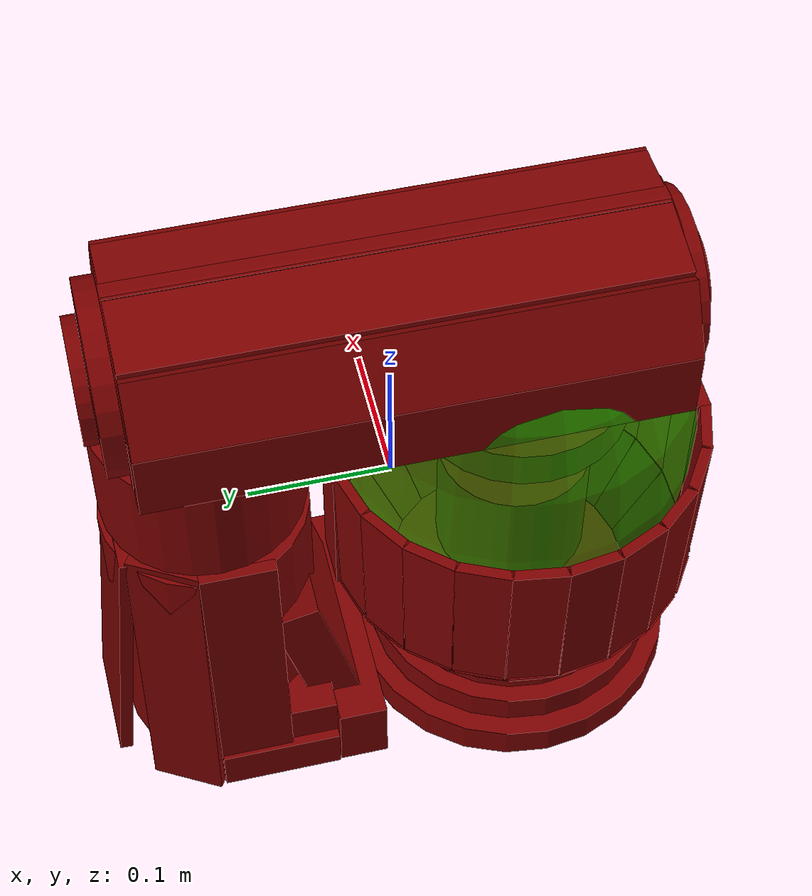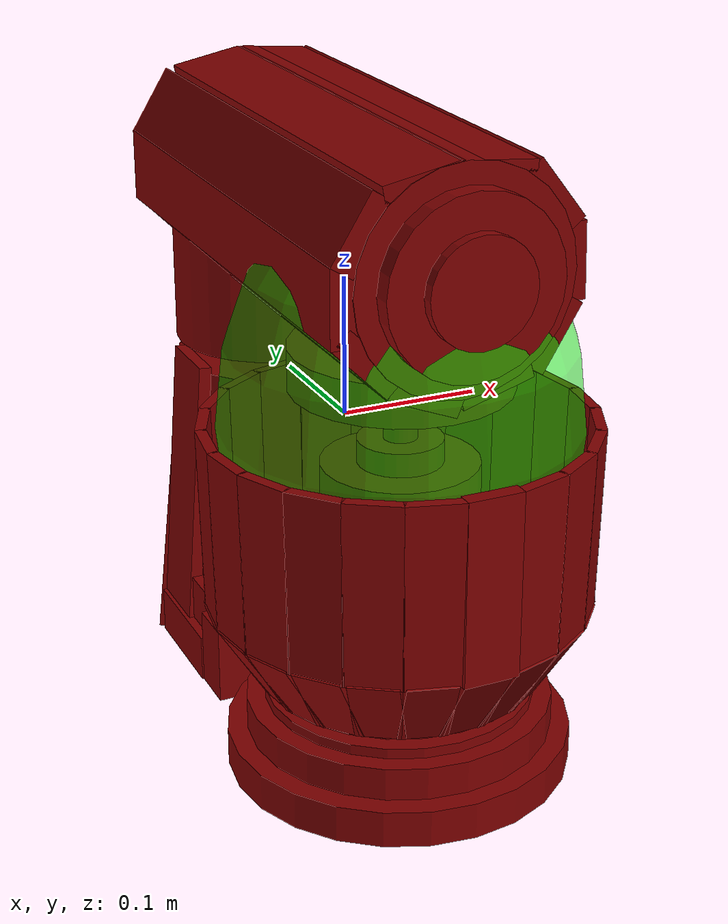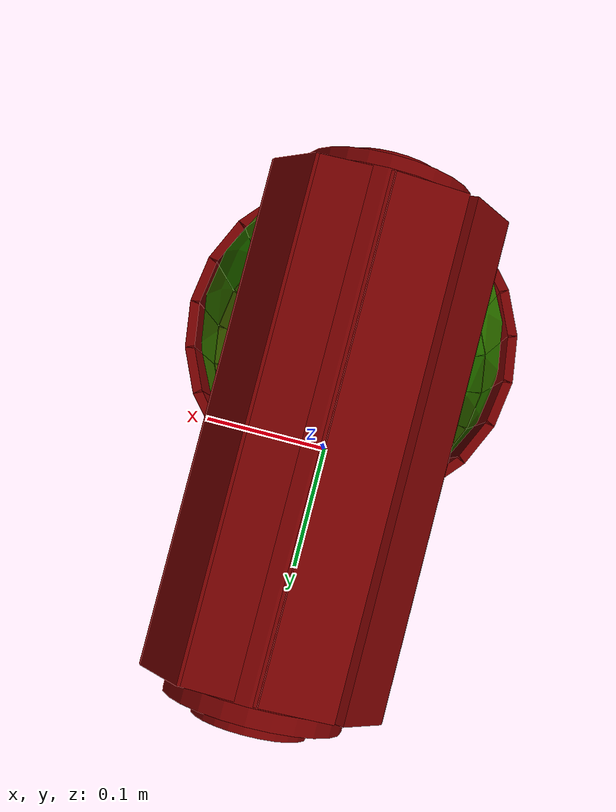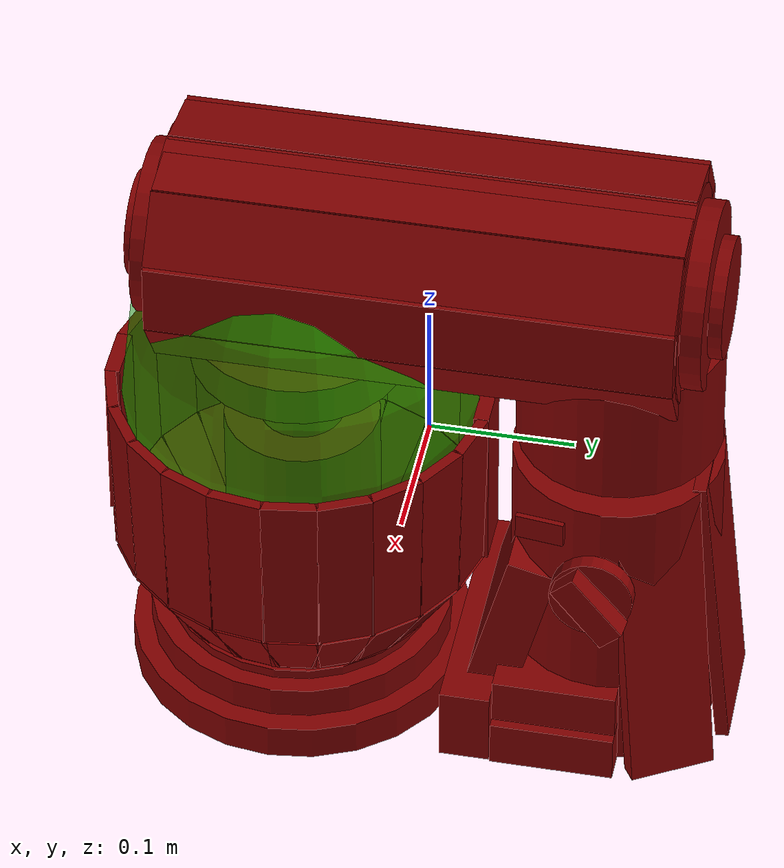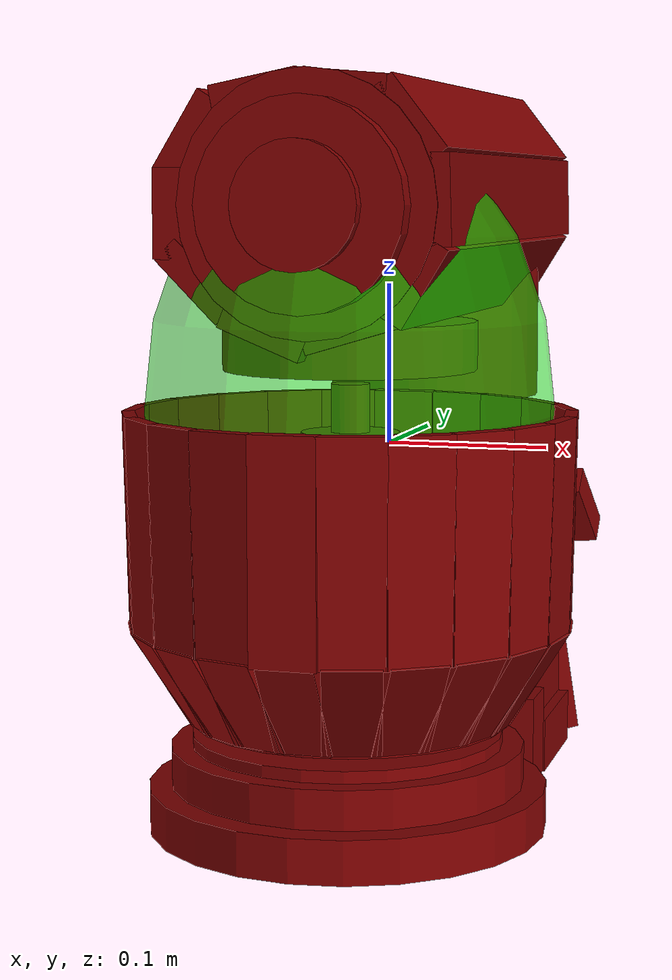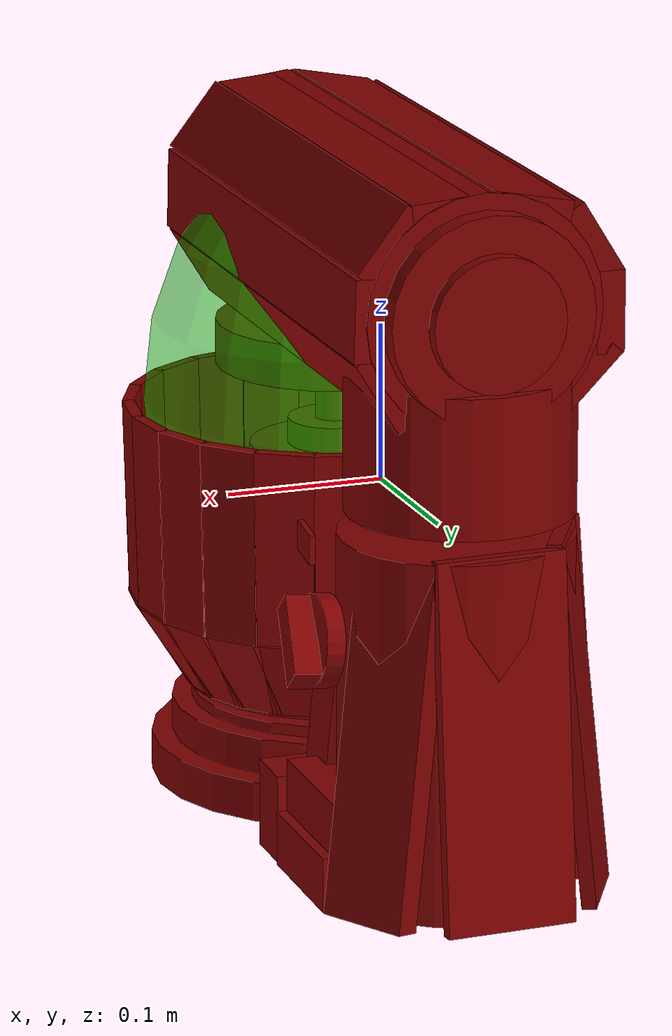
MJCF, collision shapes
<?xml version='1.0' encoding='UTF-8'?>
<mujoco model="model">
  <option timestep="0.002" gravity="0.0 0.0 -9.81"/>
  <compiler angle="radian"/>
  <asset>
    <mesh file="visuals/blender.obj" name="blender_vis"/>
    <mesh file="visuals/bowl.obj" name="bowl_vis"/>
    <mesh file="visuals/button_head_lock.obj" name="button_head_lock_vis"/>
    <mesh file="visuals/head.obj" name="head_vis"/>
    <mesh file="visuals/knob_speed.obj" name="knob_speed_vis"/>
    <mesh file="visuals/Body001.obj" name="Body001_vis"/>
    <texture file="visuals/T_BC001.png" name="Body001_material" type="2d"/>
    <material name="Body001_material" rgba="1 1 1 1.0" texture="Body001_material" shininess="0.5" specular="0.8"/>
    <texture file="visuals/T_BC001.png" name="bowl_material" type="2d"/>
    <material name="bowl_material" rgba="1 1 1 1.0" texture="bowl_material" shininess="1" specular="1"/>
    <texture file="visuals/T_BC001.png" name="button_head_lock_material" type="2d"/>
    <material name="button_head_lock_material" rgba="1 1 1 1.0" texture="button_head_lock_material" shininess="0.5" specular="0.5"/>
    <texture file="visuals/T_BC001.png" name="head_material" type="2d"/>
    <material name="head_material" rgba="1 1 1 1.0" texture="head_material" shininess="0.5" specular="0.8"/>
    <texture file="visuals/T_BC001.png" name="blender_material" type="2d"/>
    <material name="blender_material" rgba="1 1 1 1.0" texture="blender_material" shininess="1" specular="1"/>
    <texture file="visuals/T_BC001.png" name="knob_speed_material" type="2d"/>
    <material name="knob_speed_material" rgba="1 1 1 1.0" texture="knob_speed_material" shininess="0.5" specular="0.5"/>
  </asset>
  <default>
    <default class="visual">
      <geom conaffinity="0" contype="0" group="1" type="mesh"/>
    </default>
    <default class="collision">
      <geom group="0" rgba="0.5 0 0 0.5"/>
    </default>
    <default class="spawn">
      <geom group="0" rgba="1 1 1 0.5" contype="0" conaffinity="0"/>
      <site group="0" rgba="1 1 1 0.5"/>
    </default>
    <default class="region">
      <geom group="1" conaffinity="0" contype="0" rgba="0 1 0 0"/>
    </default>
  </default>
  <worldbody>
    <body>
      <body name="object">
        <geom mesh="Body001_vis" type="mesh" solimp="0.998 0.998 0.001" solref="0.001 1" friction="0.95 0.3 0.1" class="visual" material="Body001_material"/>
        <geom type="box" pos="-0.0008830471779219806 0.10278771817684174 -0.2056986689567566" size="0.09091091901063919 0.04298146069049835 0.017282437533140182" quat="1.0 0.0 0.0 0.0" class="collision"/>
        <geom type="box" pos="-0.0008830471779219806 0.10278771817684174 -0.17185385525226593" size="0.08421126753091812 0.04298141598701477 0.01728244498372078" quat="1.0 0.0 0.0 0.0" class="collision"/>
        <geom type="box" pos="-0.0008830471779219806 0.04156588762998581 -0.1941259652376175" size="0.09006163477897644 0.01740027219057083 0.028225943446159363" quat="1.0 0.0 0.0 0.0" class="collision"/>
        <geom type="box" pos="-0.0008830471779219806 0.06933079659938812 -0.11700505018234253" size="0.06461730599403381 0.017400270327925682 0.05566493421792984" quat="0.9920040369033813 -0.12620609998703003 2.802337699330418e-17 1.0587550700156344e-24" class="collision"/>
        <geom type="cylinder" pos="-0.0004208860918879509 0.13061454892158508 -0.1082337349653244" size="0.07247693091630936 0.11362940073013306" quat="1.0 0.0 0.0 0.0" class="collision"/>
        <geom type="box" pos="-0.0778222382068634 0.1199459359049797 -0.10512194782495499" size="0.004614882171154022 0.026193534955382347 0.11722630262374878" quat="0.9992656111717224 1.0035343544790307e-15 0.03831716626882553 5.14825426733978e-09" class="collision"/>
        <geom type="box" pos="-0.06547414511442184 0.16827261447906494 -0.10637463629245758" size="0.004614882171154022 0.026193533092737198 0.11722629517316818" quat="0.9631377458572388 -0.005944933742284775 0.05217960476875305 -0.2638326585292816" class="collision"/>
        <geom type="box" pos="-0.004581171553581953 0.20225533843040466 -0.1067662462592125" size="0.004614882171154022 0.040954090654850006 0.11456286907196045" quat="0.711906909942627 0.03381841257214546 0.03511016070842743 -0.7005798816680908" class="collision"/>
        <geom type="box" pos="0.05878463387489319 0.17254792153835297 -0.10720666497945786" size="0.00779386144131422 0.029881298542022705 0.11222834885120392" quat="0.25039225816726685 0.07648062705993652 0.02864135056734085 -0.9646937847137451" class="collision"/>
        <geom type="cylinder" pos="-0.0012385009322315454 -0.09077281504869461 -0.20596058666706085" size="0.11881648004055023 0.01291996892541647" quat="1.0 0.0 0.0 0.0" class="collision"/>
        <geom type="cylinder" pos="-0.0012385009322315454 -0.09120842814445496 -0.18051232397556305" size="0.10532929003238678 0.01151470560580492" quat="1.0 0.0 0.0 0.0" class="collision"/>
        <geom type="cylinder" pos="-0.0012385009322315454 -0.09120842814445496 -0.1654304563999176" size="0.09265924990177155 0.0036257957108318806" quat="1.0 0.0 0.0 0.0" class="collision"/>
        <body name="bowl">
          <geom mesh="bowl_vis" type="mesh" solimp="0.998 0.998 0.001" solref="0.001 1" friction="0.95 0.3 0.1" class="visual" material="bowl_material"/>
          <geom type="cylinder" pos="0.0 -0.08756542950868607 -0.1511540412902832" size="0.09520088136196136 0.003831111593171954" quat="1.0 0.0 0.0 0.0" class="collision"/>
          <geom type="box" pos="3.055902197957039e-10 -0.21637573838233948 -0.03392329812049866" size="0.019181977957487106 0.005253978539258242 0.0634308010339737" quat="1.0 0.0 0.0 0.0" class="collision"/>
          <geom type="box" pos="1.3193421182222664e-05 -0.19741952419281006 -0.12207989394664764" size="0.016789669170975685 0.005396272987127304 0.033444687724113464" quat="0.9610024094581604 0.27653995156288147 -3.3633448256536824e-17 4.290890239777974e-18" class="collision"/>
          <geom type="box" pos="0.03599955514073372 -0.2112175077199936 -0.03392329812049866" size="0.019181977957487106 0.0037758385296911 0.06335993111133575" quat="0.9897497892379761 0.011554669588804245 0.0016616579378023744 0.14233441650867462" class="collision"/>
          <geom type="box" pos="0.03067055530846119 -0.19302573800086975 -0.12207989394664764" size="0.016789669170975685 0.005396272987127304 0.03344469144940376" quat="0.9512166976928711 0.27372416853904724 0.039363861083984375 0.1367931216955185" class="collision"/>
          <geom type="box" pos="0.06908674538135529 -0.19612401723861694 -0.03392329812049866" size="0.019181977957487106 0.0037758387625217438 0.06335993111133575" quat="0.9594109058380127 0.011200482957065105 0.003289476502686739 0.28177011013031006" class="collision"/>
          <geom type="box" pos="0.05884744971990585 -0.18017110228538513 -0.12207989394664764" size="0.016789669170975685 0.005396272987127304 0.033444687724113464" quat="0.9220590591430664 0.26533353328704834 0.07792602479457855 0.27080026268959045" class="collision"/>
          <geom type="box" pos="0.09657993167638779 -0.17231854796409607 -0.03392329812049866" size="0.019181977957487106 0.0037758387625217438 0.06335993111133575" quat="0.9095331430435181 0.01061819214373827 0.004850304219871759 0.41546741127967834" class="collision"/>
          <geom type="box" pos="0.08226020634174347 -0.15989741683006287 -0.12207989394664764" size="0.016789669170975685 0.005396272987127304 0.033444687724113464" quat="0.8741231560707092 0.25153934955596924 0.11490114033222198 0.39929237961769104" class="collision"/>
          <geom type="box" pos="0.11625086516141891 -0.14173047244548798 -0.03392329812049866" size="0.019181977957487106 0.0037758385296911 0.06335993111133575" quat="0.8411322832107544 0.009819661267101765 0.0063123577274382114 0.5407034754753113" class="collision"/>
          <geom type="box" pos="0.09901130199432373 -0.13384786248207092 -0.12207989394664764" size="0.016789669170975685 0.005396272987127304 0.033444687724113464" quat="0.8083851933479309 0.23262245953083038 0.14953629672527313 0.5196528434753418" class="collision"/>
          <geom type="box" pos="0.1265052706003189 -0.1068388968706131 -0.03392329439520836" size="0.019181977957487106 0.0037758387625217438 0.06335993111133575" quat="0.7556012272834778 0.008821138180792332 0.007645844016224146 0.6549278497695923" class="collision"/>
          <geom type="box" pos="0.10774307698011398 -0.10413362830877304 -0.12207989394664764" size="0.016789669170975685 0.005396272987127304 0.033444687724113464" quat="0.726184070110321 0.2089681178331375 0.18112602829933167 0.6294301748275757" class="collision"/>
          <geom type="box" pos="0.1265120506286621 -0.07047165930271149 -0.03392329439520836" size="0.019181977957487106 0.0037758387625217438 0.06335993111133575" quat="0.6546820402145386 0.007642973680049181 0.008823624812066555 0.755814254283905" class="collision"/>
          <geom type="box" pos="0.10774785280227661 -0.07316301017999649 -0.12207989394664764" size="0.016789669170975685 0.005396272987127304 0.03344469144940376" quat="0.629193902015686 0.18105803430080414 0.20902703702449799 0.7263888120651245" class="collision"/>
          <geom type="box" pos="0.11627066135406494 -0.03557625040411949 -0.03392329439520836" size="0.019181977957487106 0.0037758385296911 0.06335993111133575" quat="0.5404298305511475 0.006309155840426683 0.009821707382798195 0.8413081169128418" class="collision"/>
          <geom type="box" pos="0.09902526438236237 -0.04344609007239342 -0.12207989394664764" size="0.016789669170975685 0.005396273452788591 0.033444687724113464" quat="0.5193897485733032 0.1494605839252472 0.2326710820198059 0.8085542321205139" class="collision"/>
          <geom type="box" pos="0.0966111496090889 -0.004980847239494324 -0.03392329439520836" size="0.019181977957487106 0.0037758387625217438 0.06335993111133575" quat="0.4151715040206909 0.004846848547458649 0.010619767010211945 0.9096682667732239" class="collision"/>
          <geom type="box" pos="0.08228222280740738 -0.017391346395015717 -0.12207989394664764" size="0.016789669170975685 0.005396272987127304 0.033444687724113464" quat="0.39900800585746765 0.11481930315494537 0.2515767216682434 0.87425297498703" class="collision"/>
          <geom type="box" pos="0.06912683695554733 0.018834881484508514 -0.03392329439520836" size="0.019181977957487106 0.0037758387625217438 0.06335993111133575" quat="0.28145793080329895 0.0032858329359441996 0.011201548390090466 0.9595025777816772" class="collision"/>
          <geom type="box" pos="0.058875713497400284 0.0028895654249936342 -0.12207989394664764" size="0.016789669170975685 0.005396272987127304 0.033444687724113464" quat="0.27050018310546875 0.0778396725654602 0.2653588056564331 0.9221471548080444" class="collision"/>
          <geom type="box" pos="0.03604528680443764 0.03394072502851486 -0.03392329439520836" size="0.019181977957487106 0.0037758387625217438 0.06335993111133575" quat="0.14201243221759796 0.001657901331782341 0.01155521534383297 0.9897960424423218" class="collision"/>
          <geom type="box" pos="0.030702801421284676 0.015752896666526794 -0.12207989394664764" size="0.016789669170975685 0.005396272987127304 0.033444687724113464" quat="0.1364835947751999 0.03927477449178696 0.27373671531677246 0.9512612223625183" class="collision"/>
          <geom type="box" pos="4.7639841795898974e-05 0.03911237418651581 -0.03392329439520836" size="0.019185392186045647 0.005266461055725813 0.0634308010339737" quat="1.0 0.0 0.0 0.0" class="collision"/>
          <geom type="box" pos="4.6782148274360225e-05 0.02015615999698639 -0.12207989394664764" size="0.016789669170975685 0.005396272987127304 0.033444687724113464" quat="0.00031270793988369405 8.998542034532875e-05 -0.2765398919582367 -0.9610024094581604" class="collision"/>
          <geom type="box" pos="-0.03594856709241867 0.033930711448192596 -0.03392329439520836" size="0.019181977957487106 0.0037758385296911 0.06335993111133575" quat="0.14265652000904083 0.0016654205974191427 -0.011554121971130371 -0.9897034168243408" class="collision"/>
          <geom type="box" pos="-0.03060772456228733 0.01574242115020752 -0.12207989394664764" size="0.016789669170975685 0.005396272987127304 0.03344469144940376" quat="0.13710260391235352 0.039452940225601196 -0.27371111512184143 -0.9511722326278687" class="collision"/>
          <geom type="box" pos="-0.0690259337425232 0.018815673887729645 -0.03392329439520836" size="0.019181977957487106 0.0037758387625217438 0.06335993111133575" quat="0.2820824086666107 0.0032931228633970022 -0.01119941845536232 -0.9593191742897034" class="collision"/>
          <geom type="box" pos="-0.058776263147592545 0.002869441406801343 -0.12207989394664764" size="0.016789669170975685 0.005396272987127304 0.033444687724113464" quat="0.27110034227371216 0.0780123770236969 -0.2653081715106964 -0.9219708442687988" class="collision"/>
          <geom type="box" pos="-0.09650362282991409 -0.005007706582546234 -0.03392329439520836" size="0.019181977957487106 0.0037758387625217438 0.06335993111133575" quat="0.4157634973526001 0.0048537589609622955 -0.010616607032716274 -0.9093978404998779" class="collision"/>
          <geom type="box" pos="-0.08217582106590271 -0.0174194797873497 -0.12207989394664764" size="0.016789669170975685 0.005396272987127304 0.033444687724113464" quat="0.39957696199417114 0.11498303711414337 -0.2515019178390503 -0.8739930987358093" class="collision"/>
          <geom type="box" pos="-0.11615465581417084 -0.03560857102274895 -0.03392329439520836" size="0.019181976094841957 0.0037758387625217438 0.06335993111133575" quat="0.5409773588180542 0.0063155461102724075 -0.009817596524953842 -0.8409561514854431" class="collision"/>
          <geom type="box" pos="-0.09890995174646378 -0.04347996786236763 -0.12207989394664764" size="0.016789671033620834 0.005396272987127304 0.03344469144940376" quat="0.5199159383773804 0.14961200952529907 -0.23257377743721008 -0.8082159757614136" class="collision"/>
          <geom type="box" pos="-0.1263863444328308 -0.07050687819719315 -0.03392329439520836" size="0.019181976094841957 0.0037758387625217438 0.06335993111133575" quat="0.6551739573478699 0.007648714352399111 -0.008818643167614937 -0.7553878426551819" class="collision"/>
          <geom type="box" pos="-0.10762238502502441 -0.07319991290569305 -0.12207989394664764" size="0.016789669170975685 0.005396272987127304 0.03344469144940376" quat="0.6296666860580444 0.18119409680366516 -0.20890910923480988 -0.7259790301322937" class="collision"/>
          <geom type="box" pos="-0.1263694316148758 -0.10687415301799774 -0.03392329439520836" size="0.019181977957487106 0.0037758387625217438 0.06335993111133575" quat="0.7560275793075562 0.008826112374663353 -0.007640094496309757 -0.6544356346130371" class="collision"/>
          <geom type="box" pos="-0.10760697722434998 -0.10417056828737259 -0.12207989394664764" size="0.016789669170975685 0.005396273452788591 0.033444687724113464" quat="0.7265937328338623 0.2090861201286316 -0.18099001049995422 -0.628957211971283" class="collision"/>
          <geom type="box" pos="-0.11610525846481323 -0.14176291227340698 -0.03392329439520836" size="0.019181977957487106 0.0037758385296911 0.06335993111133575" quat="0.8414843082427979 0.009823762811720371 -0.00630594789981842 -0.5401554107666016" class="collision"/>
          <geom type="box" pos="-0.09886498749256134 -0.1338818371295929 -0.12207989394664764" size="0.016789669170975685 0.005396272521466017 0.033444687724113464" quat="0.8087235689163208 0.23271983861923218 -0.14938470721244812 -0.5191260576248169" class="collision"/>
          <geom type="box" pos="-0.09642575681209564 -0.17234551906585693 -0.03392329439520836" size="0.019181979820132256 0.0037758385296911 0.06335993111133575" quat="0.9098036885261536 0.010621343739330769 -0.004843381233513355 -0.4148746430873871" class="collision"/>
          <geom type="box" pos="-0.08210493624210358 -0.1599256843328476 -0.12207989394664764" size="0.016789669170975685 0.005396273452788591 0.033444687724113464" quat="0.8743831515312195 0.25161415338516235 -0.11473721265792847 -0.39872270822525024" class="collision"/>
          <geom type="box" pos="-0.0689258798956871 -0.19614332914352417 -0.03392329439520836" size="0.019181977957487106 0.0037758387625217438 0.06335993111133575" quat="0.9595943689346313 0.01120261661708355 -0.0032821721397340298 -0.2811447083950043" class="collision"/>
          <geom type="box" pos="-0.05868517979979515 -0.18019132316112518 -0.12207989394664764" size="0.016789669170975685 0.005396273452788591 0.033444687724113464" quat="0.9222353100776672 0.2653842866420746 -0.07775307446718216 -0.2701992690563202" class="collision"/>
          <geom type="box" pos="-0.035834427922964096 -0.21122756600379944 -0.03392329439520836" size="0.019181977957487106 0.0037758387625217438 0.06335993111133575" quat="0.9898423552513123 0.01155574806034565 -0.0016541274962946773 -0.14168919622898102" class="collision"/>
          <geom type="box" pos="-0.03050382249057293 -0.193036288022995 -0.12207989394664764" size="0.016789669170975685 0.005396272987127304 0.03344469144940376" quat="0.9513057470321655 0.27374956011772156 -0.03918535262346268 -0.1361728310585022" class="collision"/>
          <geom name="reg_bowl" type="ellipsoid" pos="-1.1641532182693481e-09 -0.0885663703083992 0.029247641563415527" size="0.12062320858240128 0.12292179465293884 0.17445611953735352" rgba="0 1 0 0.5" class="region"/>
        </body>
        <body name="button_head_lock">
          <joint axis="-1.0 0.0 0.0" pos="0.07669508457183838 0.09103693068027496 -0.005698777735233307" limited="true" name="button_head_lock_joint" range="0.0 0.005" type="slide" damping="1" frictionloss="1" armature=".01" stiffness="0.05"/>
          <geom mesh="button_head_lock_vis" type="mesh" solimp="0.998 0.998 0.001" solref="0.001 1" friction="0.95 0.3 0.1" class="visual" material="button_head_lock_material"/>
          <geom class="collision" type="box" pos="0.08092193305492401 0.09098409861326218 -0.005507754627615213" size="0.0019145847763866186 0.016794392839074135 0.009193899109959602" quat="0.9981203079223633 0.0 -0.0 -0.061285194009542465" name="button_head_lock_main"/>
        </body>
        <body name="head">
          <joint axis="-1.0 0.0 0.0" pos="2.8258078600629233e-05 0.19589409232139587 0.013518691062927246" limited="true" name="head_joint" range="0.0 1.5707963267948966" type="hinge" damping="1" frictionloss="1" armature=".01" stiffness="0.05"/>
          <geom mesh="head_vis" type="mesh" solimp="0.998 0.998 0.001" solref="0.001 1" friction="0.95 0.3 0.1" class="visual" material="head_material"/>
          <geom type="cylinder" pos="0.0 -0.08951590955257416 0.06816485524177551" size="0.07472942024469376 0.01424634363502264" quat="1.0 0.0 0.0 0.0" class="collision"/>
          <geom type="cylinder" pos="0.0 -2.0133448686010524e-08 0.1498483270406723" size="0.07403885573148727 0.17803466320037842" quat="0.7071067094802856 0.7071068286895752 0.0 0.0" class="collision"/>
          <geom type="box" pos="-0.06733047962188721 -2.4439096080186573e-08 0.18727435171604156" size="0.008463400416076183 0.17721013724803925 0.02514791488647461" quat="0.9614970684051514 -5.496315267811982e-16 0.27481529116630554 3.692386840725703e-08" class="collision"/>
          <geom type="box" pos="-0.07939597964286804 -1.4189092567562511e-08 0.1450451761484146" size="0.008751733228564262 0.17721013724803925 0.025243479758501053" quat="1.0 0.0 0.0 0.0" class="collision"/>
          <geom type="box" pos="-0.06360438466072083 -3.2845740349785046e-08 0.10778410732746124" size="0.008463402278721333 0.17721018195152283 0.025147918611764908" quat="0.924111545085907 -2.5293553652239306e-15 -0.38212287425994873 -5.1341576323693516e-08" class="collision"/>
          <geom type="box" pos="-0.024925507605075836 -2.6583666823398744e-08 0.08135302364826202" size="0.008463401347398758 0.17721018195152283 0.02514791488647461" quat="0.8289874792098999 1.0401674188642573e-08 -0.5592671632766724 -8.718938460106074e-08" class="collision"/>
          <geom type="box" pos="0.021395299583673477 -3.615033827841785e-09 0.08360937237739563" size="0.008463401347398758 0.17721018195152283 0.025147918611764908" quat="0.5975018739700317 9.711217154864324e-14 -0.8018675446510315 -1.0773769076877215e-07" class="collision"/>
          <geom type="box" pos="0.05955358222126961 -1.4888405175383923e-08 0.10878778994083405" size="0.008463401347398758 0.17721018195152283 0.025147918611764908" quat="0.27124133706092834 2.549331663197034e-14 -0.9625113606452942 -1.2932187587466615e-07" class="collision"/>
          <geom type="box" pos="0.07235150039196014 -1.649517855639715e-08 0.15280699729919434" size="0.008463403210043907 0.17721018195152283 0.025147920474410057" quat="0.013781306333839893 -2.980226132607948e-14 0.9999050498008728 1.3434603829409753e-07" class="collision"/>
          <geom type="box" pos="0.05706927552819252 -2.5971095496402086e-08 0.19511158764362335" size="0.008463402278721333 0.17721018195152283 0.025147918611764908" quat="0.3251722455024719 -8.059226436164454e-14 0.9456548094749451 1.2705702090443083e-07" class="collision"/>
          <geom type="box" pos="0.020116006955504417 -5.2222873136997805e-08 0.21448300778865814" size="0.00717508140951395 0.17721018195152283 0.02525954693555832" quat="0.6758987903594971 -4.639986311838484e-13 0.7369944453239441 9.902148434548508e-08" class="collision"/>
          <geom type="box" pos="-0.02909490093588829 -1.1129349886118689e-08 0.212326779961586" size="0.0070573752745985985 0.17721018195152283 0.025420913472771645" quat="0.7715572118759155 -2.638452878487435e-13 0.6361599564552307 8.547355889731989e-08" class="collision"/>
          <geom type="cylinder" pos="0.0 -0.19632476568222046 0.1498483270406723" size="0.03570923954248428 0.004075794946402311" quat="0.7071067094802856 0.7071068286895752 0.0 0.0" class="collision"/>
          <geom type="cylinder" pos="0.0 -0.1848289966583252 0.1498483270406723" size="0.05936238914728165 0.006775527726858854" quat="0.7071067094802856 0.7071068286895752 0.0 0.0" class="collision"/>
          <geom type="cylinder" pos="0.0 0.18524351716041565 0.1498483419418335" size="0.06379470229148865 0.007281424477696419" quat="0.7071067094802856 0.7071068286895752 0.0 0.0" class="collision"/>
          <geom type="cylinder" pos="0.0 0.19801872968673706 0.1498483419418335" size="0.041398465633392334 0.004725154023617506" quat="0.7071067094802856 0.7071068286895752 0.0 0.0" class="collision"/>
          <geom type="cylinder" pos="-0.002649070229381323 0.1305101364850998 0.06293486803770065" size="0.07060562074184418 0.043314408510923386" quat="1.0 0.0 0.0 0.0" class="collision"/>
          <body name="blender">
            <joint axis="0.0 0.0 1.0" pos="2.4729240976739675e-05 -0.08856616914272308 0.045315101742744446" limited="false" name="blender_joint" range="0 360" type="hinge" damping="1" frictionloss="1" armature=".01" stiffness="0.05"/>
            <geom mesh="blender_vis" type="mesh" solimp="0.998 0.998 0.001" solref="0.001 1" friction="0.95 0.3 0.1" class="visual" material="blender_material"/>
            <geom type="cylinder" pos="0.0 -0.08864181488752365 0.03108813427388668" size="0.011517362669110298 0.014278058893978596" quat="1.0 0.0 0.0 0.0" class="collision"/>
            <geom type="cylinder" pos="0.0 -0.08864181488752365 0.004978269804269075" size="0.029136326164007187 0.011821734718978405" quat="1.0 0.0 0.0 0.0" class="collision"/>
            <geom type="cylinder" pos="0.0 -0.08864181488752365 -0.04688228294253349" size="0.053633883595466614 0.047199174761772156" quat="1.0 0.0 0.0 0.0" class="collision"/>
            <geom type="cylinder" pos="0.0 -0.08864181488752365 -0.10324215143918991" size="0.04410485923290253 0.010118677280843258" quat="1.0 0.0 0.0 0.0" class="collision"/>
            <geom type="cylinder" pos="0.0 -0.08864181488752365 -0.12064630538225174" size="0.026273531839251518 0.008609474636614323" quat="1.0 0.0 0.0 0.0" class="collision"/>
          </body>
        </body>
        <body name="knob_speed">
          <joint axis="-1.0 0.0 0.0" pos="0.0919528529047966 0.12810015678405762 -0.056007809937000275" limited="true" name="knob_speed_joint" range="0.0 4.625122517784973" type="hinge" damping="0.05" armature="0.001"/>
          <geom mesh="knob_speed_vis" type="mesh" solimp="0.998 0.998 0.001" solref="0.001 1" friction="0.95 0.3 0.1" class="visual" material="knob_speed_material"/>
          <geom type="cylinder" pos="0.08516693115234375 0.12782961130142212 -0.05548497661948204" size="0.028630029410123825 0.005836840718984604" quat="0.6730660796165466 -4.468526437761966e-09 -0.739582359790802 -4.468527325940386e-09" class="collision"/>
          <geom class="collision" type="box" pos="0.0983128696680069 0.1282060742378235 -0.05471491068601608" size="0.008485382422804832 0.010091015137732029 0.026327859610319138" quat="0.9291799068450928 0.36466386914253235 -0.0562005490064621 -0.022056343033909798" name="knob_speed_main"/>
        </body>
        <geom class="region" name="reg_main" type="box" pos="-1.142360270023346e-05 0.0029984712600708008 0.0" size="0.12253057754039764 0.22027151083946228 0.22492447292804718"/>
      </body>
    </body>
  </worldbody>
  <actuator>
    <motor name="button_head_lock_joint_actuator" joint="button_head_lock_joint" gear="0.5"/>
    <motor name="head_joint_actuator" joint="head_joint" gear="0.5"/>
    <motor name="knob_speed_joint_actuator" joint="knob_speed_joint" gear="0.5"/>
    <motor name="blender_joint_actuator" joint="blender_joint" gear="0.5"/>
  </actuator>
</mujoco>
